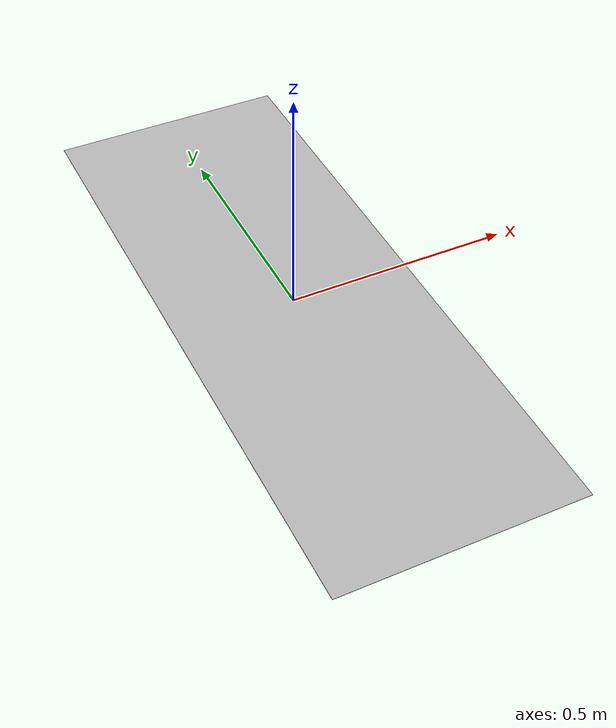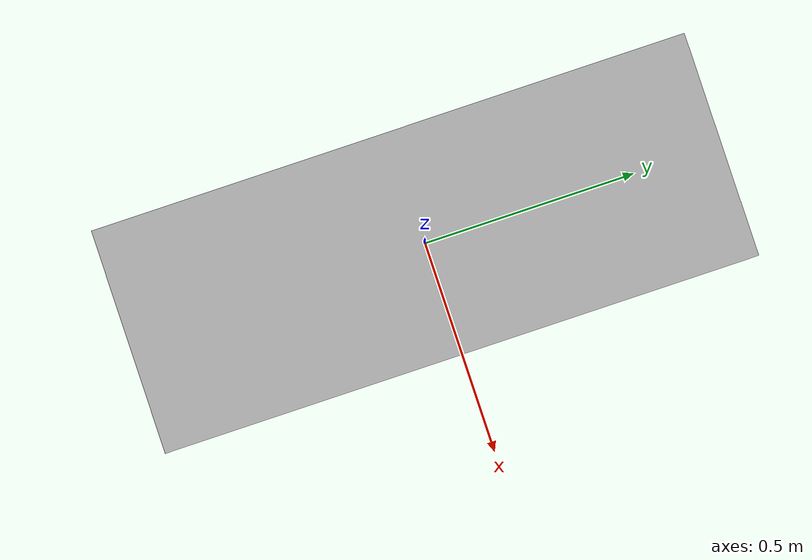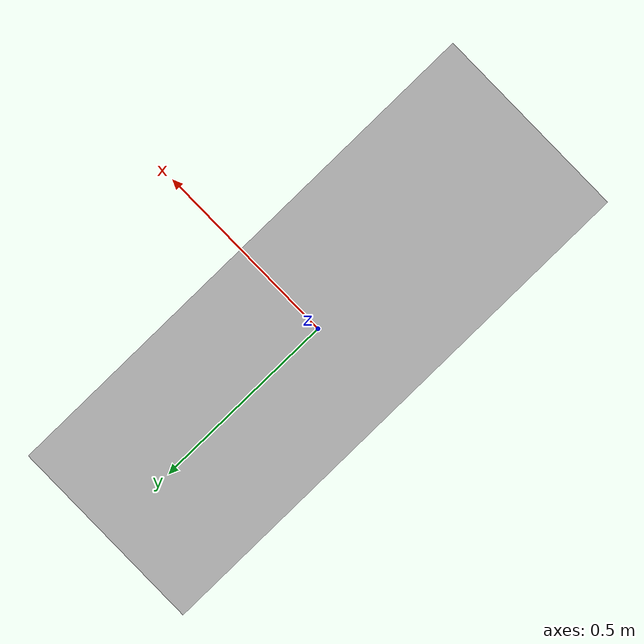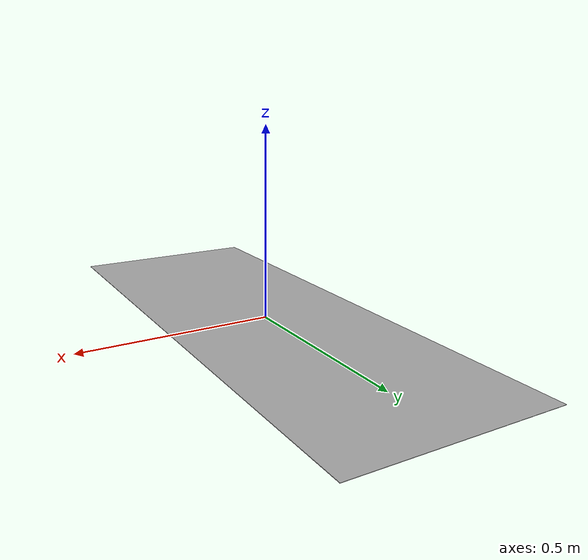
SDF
<?xml version="1.0" ?>
<sdf version="1.4">
  <model name="ARUCO_board">
    <static>true</static>
    <link name="marker">
      <gravity>false</gravity>
      <visual name="visual">
        <geometry>
          <box>
            <size>0.5334 1.4224 0.001</size>
            <!-- SIZE OF THE MARKER + MARGIN -->
          </box>
        </geometry>
        <material>
          <script>
            <uri>model://ARUCO_board/material/scripts</uri>
	          <uri>model://ARUCO_board/material/textures</uri>
            <name>ARUCO_board</name>
          </script>
        </material>
      </visual>
      <collision name="collision">
        <geometry>
          <box>
            <size>0.5334 1.4224 0.001</size>
            <!-- SIZE OF THE MARKER + MARGIN -->
          </box>
        </geometry>
      </collision>
    </link>
  </model>
</sdf>
